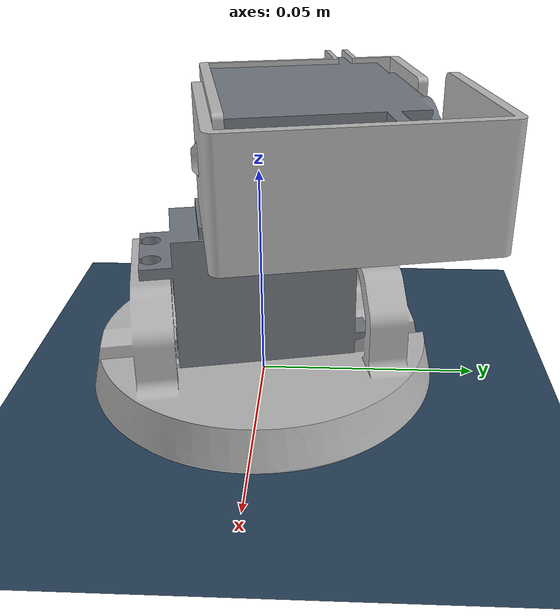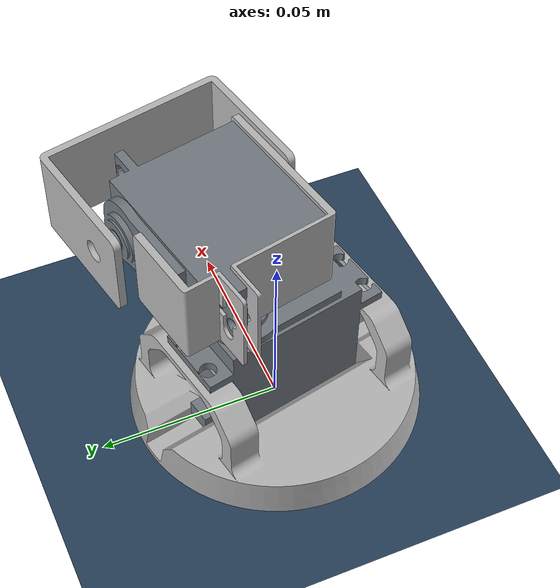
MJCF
<?xml version='1.0' encoding='utf-8'?>
<mujoco>
  <option integrator="implicitfast" timestep="0.002" solver="Newton" iterations="200" tolerance="1e-10" />
  <compiler meshdir="meshes" autolimits="true" inertiafromgeom="true" angle="radian" />
  <default>
    <joint damping="10.0" armature="1.0" />
    <geom conaffinity="0" condim="3" friction="1 0.5 0.5" margin="0" />
  </default>
  <asset>
    <texture type="skybox" builtin="gradient" rgb1="0.3 0.5 0.7" rgb2="0 0 0" width="512" height="3072" />
    <texture type="2d" name="groundplane" builtin="checker" mark="edge" rgb1="0.2 0.3 0.4" rgb2="0.1 0.2 0.3" markrgb="0.8 0.8 0.8" width="300" height="300" />
    <material name="groundplane" texture="groundplane" texuniform="true" texrepeat="5 5" reflectance="0.1" />
    <!--Part Meshes-->
    <mesh name="BaseLink" file="BaseLink.obj" scale="0.001 0.001 0.001" />
    <material name="BaseLink" rgba="0.7137255072593689 0.7137255072593689 0.7137255072593689 1.0" shininess="0.8999999761581421" />
    <!--Part Meshes-->
    <mesh name="ServoMotor 1 - Body Link" file="ServoMotor 1 - Body Link.obj" scale="0.001 0.001 0.001" />
    <material name="ServoMotor 1 - Body Link" rgba="0.4470588266849518 0.4745098054409027 0.501960813999176 1.0" shininess="0.8999999761581421" />
    <!--Part Meshes-->
    <mesh name="ServoMotor 1 - Output Shaft Link" file="ServoMotor 1 - Output Shaft Link.obj" scale="0.001 0.001 0.001" />
    <material name="ServoMotor 1 - Output Shaft Link" rgba="0.4470588266849518 0.4745098054409027 0.501960813999176 1.0" shininess="0.8999999761581421" />
    <!--Part Meshes-->
    <mesh name="FirstJointLink" file="FirstJointLink.obj" scale="0.001 0.001 0.001" />
    <material name="FirstJointLink" rgba="0.7137255072593689 0.7137255072593689 0.7137255072593689 1.0" shininess="0.8999999761581421" />
    <!--Part Meshes-->
    <mesh name="ServoMotor 2 - Body Link" file="ServoMotor 2 - Body Link.obj" scale="0.001 0.001 0.001" />
    <material name="ServoMotor 2 - Body Link" rgba="0.4470588266849518 0.4745098054409027 0.501960813999176 1.0" shininess="0.8999999761581421" />
    <!--Part Meshes-->
    <mesh name="ServoMotor 2 - Output Shaft Link" file="ServoMotor 2 - Output Shaft Link.obj" scale="0.001 0.001 0.001" />
    <material name="ServoMotor 2 - Output Shaft Link" rgba="0.4470588266849518 0.4745098054409027 0.501960813999176 1.0" shininess="0.8999999761581421" />
    <!--Part Meshes-->
    <mesh name="SecondJointLink" file="SecondJointLink.obj" scale="0.001 0.001 0.001" />
    <material name="SecondJointLink" rgba="0.7137255072593689 0.7137255072593689 0.7137255072593689 1.0" shininess="0.8999999761581421" />
  </asset>
  <worldbody>
    <!--Lighting and floor-->
    <light diffuse=".8 .8 .8" pos="0 0 4" dir="0 0 -1" />
    <light diffuse=".6 .6 .6" pos="4 4 4" dir="-1 -1 -1" />
    <geom name="floor" pos="0 0 -0.001" size="0 0 1" type="plane" material="groundplane" />
    <!--Assembly-->
    <body name="BaseLink" pos="0 0 0" quat="1.0 0.0 0.0 0.0">
      <geom type="mesh" name="BaseLink geom" mesh="BaseLink" material="BaseLink" contype="0" conaffinity="0" />
      <site name="BaseLink site" pos="0.0 0.0 0.0" quat="0.0 0.0 0.9947063623559446 -0.10275822443291023" rgba="0 0 0 0" />
      <body name="ServoMotor 1 - Body Link" pos="0 0 0" quat="1.0 0.0 0.0 0.0">
        <geom type="mesh" name="ServoMotor 1 - Body Link geom" mesh="ServoMotor 1 - Body Link" material="ServoMotor 1 - Body Link" contype="0" conaffinity="0" />
        <site name="ServoMotor 1 - Body Link site" pos="-0.01378460789485966 0.017578259589190636 0.0020000000000000013" quat="0.0 0.0 -0.6307025767920914 0.7760246514304916" rgba="0 0 0 0" />
        <body name="ServoMotor 1 - Output Shaft Link" pos="0 0 0" quat="1.0 0.0 0.0 0.0">
          <geom type="mesh" name="ServoMotor 1 - Output Shaft Link geom" mesh="ServoMotor 1 - Output Shaft Link" material="ServoMotor 1 - Output Shaft Link" contype="0" conaffinity="0" />
          <site name="ServoMotor 1 - Output Shaft Link site" pos="-0.0021311673132399676 0.010204839581442601 0.03785000000000001" quat="0.0 -2.262001480584835e-16 -0.6307025767920911 0.7760246514304919" rgba="0 0 0 0" />
          <joint type="hinge" name="Revolute" pos="-0.0021311673132399546 0.010204839581442594 0.04345000000000001" axis="0.0 0.0 1.0" />
          <body name="FirstJointLink" pos="0 0 0" quat="1.0 0.0 0.0 0.0">
            <geom type="mesh" name="FirstJointLink geom" mesh="FirstJointLink" material="FirstJointLink" contype="0" conaffinity="0" />
            <site name="FirstJointLink site" pos="-0.0021311673132399706 0.010204839581442603 0.04785000000000001" quat="0.0 0.0 0.10275822443291092 0.9947063623559445" rgba="0 0 0 0" />
            <body name="ServoMotor 2 - Body Link" pos="0 0 0" quat="1.0 0.0 0.0 0.0">
              <geom type="mesh" name="ServoMotor 2 - Body Link geom" mesh="ServoMotor 2 - Body Link" material="ServoMotor 2 - Body Link" contype="0" conaffinity="0" />
              <site name="ServoMotor 2 - Body Link site" pos="0.03383043558284749 -0.0027686320340169672 0.05095489396411068" quat="-0.07266103731920054 0.7033636141112917 0.7033636141112913 -0.07266103731920028" rgba="0 0 0 0" />
              <body name="ServoMotor 2 - Output Shaft Link" pos="0 0 0" quat="1.0 0.0 0.0 0.0">
                <geom type="mesh" name="ServoMotor 2 - Output Shaft Link geom" mesh="ServoMotor 2 - Output Shaft Link" material="ServoMotor 2 - Output Shaft Link" contype="0" conaffinity="0" />
                <site name="ServoMotor 2 - Output Shaft Link site" pos="0.017104410819154252 0.030361755763356015 0.060854893964110646" quat="-0.07266103731920087 0.7033636141112919 0.7033636141112911 -0.07266103731920004" rgba="0 0 0 0" />
                <joint type="hinge" name="Revolute001" pos="0.015959611111322707 0.03584349213324365 0.060854893964110646" axis="-0.204428519255633 0.9788814946227911 -8.196568423990414e-16" />
                <body name="SecondJointLink" pos="0 0 0" quat="1.0 0.0 0.0 0.0">
                  <geom type="mesh" name="SecondJointLink geom" mesh="SecondJointLink" material="SecondJointLink" contype="0" conaffinity="0" />
                  <site name="SecondJointLink site" pos="0.04443844745430291 0.02176812782002775 0.04885489396411068" quat="-4.934699936309187e-16 4.368578673845185e-16 0.9947063623559445 -0.10275822443291081" rgba="0 0 0 0" />
                </body>
              </body>
            </body>
          </body>
        </body>
      </body>
    </body>
  </worldbody>
  <contact />
  <equality />
  <tendon />
  <actuator>
    <position name="Revolute" joint="Revolute" kp="100" />
    <position name="Revolute001" joint="Revolute001" kp="100" />
  </actuator>
  <sensor>
    <jointpos name="Revolute_pos" joint="Revolute" />
    <jointpos name="Revolute001_pos" joint="Revolute001" />
  </sensor>
</mujoco>
